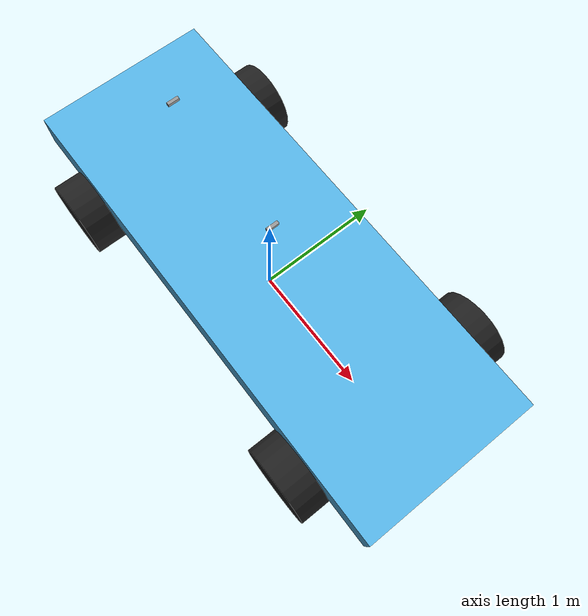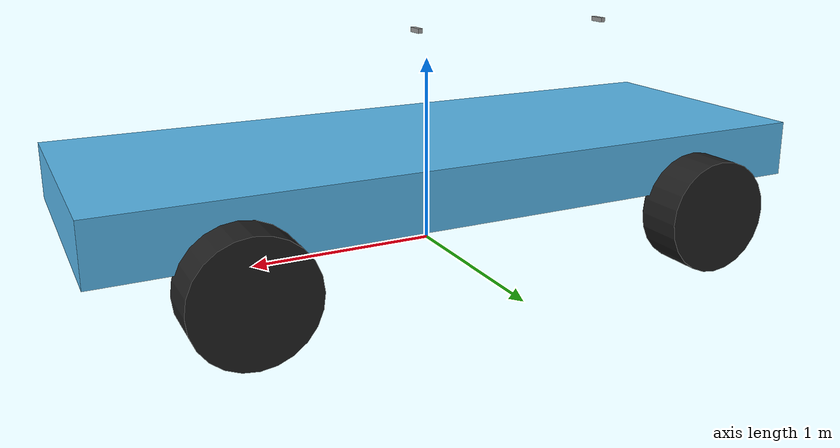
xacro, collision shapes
<?xml version="1.0"?>
<robot name="autocar_ros" xmlns:xacro="http://ros.org/wiki/xacro">

  <!-- ========== SENSOR ENABLE ARGS (default: all on) ========== -->
  <xacro:arg name="enable_frontcam" default="true"/>
  <xacro:arg name="enable_rearcam" default="true"/>
  <xacro:arg name="enable_imu" default="true"/>

  <xacro:property name="r" value="0.3"/>
  <xacro:property name="w" value="0.25"/>

  <!-- Base Footprint -->
  <link name="base_footprint"/>

  <joint name="base_joint" type="fixed">
    <parent link="base_footprint"/>
    <child link="chassis"/>
    <origin rpy="0 0 0" xyz="0 0 0"/>
  </joint>

  <link name="chassis">
    <visual>
      <geometry>
        <mesh filename="package://gazebo_cars/models/car_019/meshes/car_019.dae"/>
      </geometry>
      <origin xyz="-0.05 0 0.56" rpy="0 0 -1.5708"/>
    </visual>
    <collision>
      <geometry>
        <box size="1.4 3.8 0.3"/>
      </geometry>
      <origin xyz="0 0 0.45" rpy="0 0 -1.5708"/>
    </collision>
    <inertial>
      <mass value="500.0"/>
      <inertia ixx="0.5" ixy="0" ixz="0" iyy="0.5" iyz="0" izz="0.5"/>
    </inertial>
  </link>

  <!-- Wheel Macro -->
  <xacro:macro name="wheel" params="name x y mu">
    <link name="${name}">
      <visual>
        <geometry>
          <cylinder radius="${r}" length="${w}"/>
        </geometry>
      </visual>
      <collision>
        <geometry>
          <cylinder radius="${r}" length="${w}"/>
        </geometry>
      </collision>
      <inertial>
        <mass value="0.5"/>
        <inertia ixx="0.05" ixy="0" ixz="0" iyy="0.05" iyz="0" izz="0.03"/>
      </inertial>
    </link>

    <joint name="${name}_joint" type="continuous">
      <parent link="chassis"/>
      <child link="${name}"/>
      <origin xyz="${x} ${y} 0.2" rpy="1.5708 0 0"/>
      <axis xyz="0 0 1"/>
    </joint>

    <gazebo reference="${name}">
      <material>Gazebo/Black</material>
    </gazebo>
  </xacro:macro>

  <!-- Rear Wheels -->
  <xacro:wheel name="rear_wheel_right" x="-1.25" y="0.8" mu="10"/>
  <xacro:wheel name="rear_wheel_left"  x="-1.25" y="-0.8" mu="10"/>

  <!-- Front Wheels -->
  <xacro:wheel name="front_wheel_right" x="1.25" y="0.8" mu="5"/>
  <xacro:wheel name="front_wheel_left"  x="1.25" y="-0.8" mu="5"/>

  <!-- Differential Drive Plugin -->
  <gazebo>
    <plugin name="planar_move" filename="libgazebo_ros_planar_move.so">
      <commandTopic>cmd_vel</commandTopic>
      <odometryTopic>odom</odometryTopic>
      <odometryFrame>odom</odometryFrame>
      <odometryRate>10</odometryRate>
      <cmdTimeout>0.5</cmdTimeout>
      <robotBaseFrame>base_footprint</robotBaseFrame>
      <leftJoint>front_wheel_left_joint</leftJoint>
      <rightJoint>front_wheel_right_joint</rightJoint>
      <wheelSeparation>1.6</wheelSeparation>
      <wheelDiameter>0.6</wheelDiameter>
      <torque>0</torque>
    </plugin>
  </gazebo>

  <xacro:include filename="$(find autocar_ros)/urdf/sensors/camera_d435.xacro"/>

  <xacro:if value="$(arg enable_frontcam)">
    <xacro:camera_d435 parent_link="chassis" name="camera_front"
                      xyz="0.06 0 1.15" rpy="0 0 0" use_depth="true"/>
  </xacro:if>

  <xacro:if value="$(arg enable_rearcam)">
    <xacro:camera_d435 parent_link="chassis" name="camera_rear"
                       xyz="-1.1 0 1.15" rpy="0 0 3.14159" use_depth="false"/>
  </xacro:if>

  <xacro:if value="$(arg enable_imu)">
    <xacro:include filename="$(find autocar_ros)/urdf/sensors/imu.xacro"/>
    <xacro:imu_sensor name="imu" parent="chassis" xyz="0 0 0" rpy="0 -1.5708 0"/>
  </xacro:if>

</robot>

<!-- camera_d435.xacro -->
<robot xmlns:xacro="http://www.ros.org/wiki/xacro">

  <xacro:include filename="$(find hector_sensors_description)/urdf/realsense_d435_camera.urdf.xacro"/>

  <xacro:macro name="camera_d435"
               params="parent_link name xyz rpy
                       min_range:=0.3 max_range:=30.0 update_rate:=20
                       horizontal_fov_deg:=80 width:=640 height:=480
                       use_depth:=true">

    <!-- Physical model (mesh + collision + inertial) — same for both modes -->
    <xacro:realsense_d435_camera_model name="${name}" parent="${parent_link}">
      <origin xyz="${xyz}" rpy="${rpy}"/>
    </xacro:realsense_d435_camera_model>

    <gazebo reference="${name}_link">

      <!-- ========== DEPTH MODE ========== -->
      <xacro:if value="${use_depth}">
        <sensor type="depth" name="${name}">
          <update_rate>${update_rate}</update_rate>
          <camera>
            <horizontal_fov>${horizontal_fov_deg * M_PI / 180.0}</horizontal_fov>
            <image>
              <format>B8G8R8</format>
              <width>${width}</width>
              <height>${height}</height>
            </image>
            <clip>
              <near>${min_range}</near>
              <far>${max_range}</far>
            </clip>
          </camera>
          <plugin name="${name}_camera_controller" filename="libgazebo_ros_openni_kinect.so">
            <alwaysOn>true</alwaysOn>
            <updateRate>${update_rate}</updateRate>
            <cameraName>${name}</cameraName>
            <imageTopicName>color/image_raw</imageTopicName>
            <cameraInfoTopicName>color/camera_info</cameraInfoTopicName>
            <frameName>${name}_color_optical_frame</frameName>
            <cameraInfoTopicName>color/camera_info</cameraInfoTopicName>
            <depthImageTopicName>depth/image_raw</depthImageTopicName>
            <depthImageCameraInfoTopicName>depth/camera_info</depthImageCameraInfoTopicName>
            <pointCloudTopicName>depth/points</pointCloudTopicName>
            <pointCloudCutoff>${min_range}</pointCloudCutoff>
            <pointCloudCutoffMax>${max_range}</pointCloudCutoffMax>
          </plugin>
        </sensor>
      </xacro:if>

      <!-- ========== COLOR-ONLY MODE ========== -->
      <xacro:unless value="${use_depth}">
        <sensor type="camera" name="${name}">
          <update_rate>${update_rate}</update_rate>
          <camera>
            <horizontal_fov>${horizontal_fov_deg * M_PI / 180.0}</horizontal_fov>
            <image>
              <format>R8G8B8</format>
              <width>${width}</width>
              <height>${height}</height>
            </image>
            <clip>
              <near>${min_range}</near>
              <far>${max_range}</far>
            </clip>
          </camera>
          <plugin name="${name}_camera_controller" filename="libgazebo_ros_camera.so">
            <alwaysOn>true</alwaysOn>
            <updateRate>${update_rate}</updateRate>
            <cameraName>${name}</cameraName>
            <imageTopicName>color/image_raw</imageTopicName>
            <cameraInfoTopicName>color/camera_info</cameraInfoTopicName>
            <frameName>${name}_color_optical_frame</frameName>
          </plugin>
        </sensor>
      </xacro:unless>

    </gazebo>
  </xacro:macro>

</robot>

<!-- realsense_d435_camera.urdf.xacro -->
<robot xmlns:xacro="http://www.ros.org/wiki/xacro">
  <xacro:arg name="simulator" default="gazebo"/>
  <xacro:property name="M_PI" value="3.1415926535897931" />

  <xacro:property name="realsense_d435_width" value="0.09"/>
  <xacro:property name="realsense_d435_height" value="0.025"/>
  <xacro:property name="realsense_d435_depth" value="0.025"/>

  <xacro:property name="realsense_d435_front_to_depth" value="0.0042" /> <!-- Intel_RealSense_D400_Family_Datasheet_Jan2019.pdf, page 64 -->
  <xacro:property name="realsense_d435_mount_hole_to_front" value="0.0149" /> <!-- Measured from CAD file -->

  <xacro:property name="realsense_d435_case_offset_x" value="${realsense_d435_front_to_depth - realsense_d435_depth/2.0}"/>
  <xacro:property name="realsense_d435_case_offset_y" value="-0.0175"/> <!-- mounting hole to depth frame, Intel_RealSense_D400_Family_Datasheet_Jan2019.pdf, page 66 -->
  <xacro:property name="realsense_d435_case_offset_z" value="0.0"/>

    <!--
     This macro only adds the model, it does not also add the openni gazebo plugin.
     The origin is the left infrared (depth) camera, which is also the origin of the depth image
    -->
    <xacro:macro name="realsense_d435_camera_model" params="name parent *origin">

      <joint name="${name}_joint" type="fixed">
        <xacro:insert_block name="origin" />
        <parent link="${parent}"/>
        <child link="${name}_link"/>
      </joint>

      <link name="${name}_link">
        <inertial>
          <mass value="0.072" />
          <origin xyz="0 0 0" rpy="0 0 0" />
          <inertia ixx="5.8083e-4" ixy="0" ixz="0" iyy="3.0833e-5" iyz="0" izz="5.9083e-4" />
        </inertial>
	<visual>
          <origin xyz="${realsense_d435_front_to_depth} ${realsense_d435_case_offset_y} 0.0" rpy="${M_PI/2} 0 ${M_PI/2}" />
          <geometry>
            <mesh filename="package://hector_sensors_description/meshes/intel_realsense_d435/D435.dae" scale="0.001 0.001 0.001" />
          </geometry>
        </visual>
        <collision>
          <origin xyz="${realsense_d435_case_offset_x} ${realsense_d435_case_offset_y} ${realsense_d435_case_offset_z}" rpy="0 0 0" />
          <geometry>
            <!--Dimensions taken from https://click.intel.com/intelr-realsensetm-depth-camera-d435.html-->
            <box size="${realsense_d435_depth} ${realsense_d435_width} ${realsense_d435_height}" />
          </geometry>
        </collision>
      </link>

      <gazebo reference="${name}_link">
        <material>Gazebo/Grey</material>
      </gazebo>
    </xacro:macro>

    <xacro:macro name="realsense_d435_camera_model_with_mount" params="name parent *origin">
      <joint name="${name}_mount_joint" type="fixed">
        <xacro:insert_block name="origin" />
        <parent link="${parent}"/>
        <child link="${name}_mount_link"/>
      </joint>

      <link name="${name}_mount_link">
      </link>

      <xacro:realsense_d435_camera_model name="${name}" parent="${name}_mount_link">
        <origin xyz="${realsense_d435_mount_hole_to_front - realsense_d435_front_to_depth} ${-realsense_d435_case_offset_y} ${realsense_d435_height/2.0}" rpy="0 0 0"/>
      </xacro:realsense_d435_camera_model>
    </xacro:macro>

    <xacro:macro name="realsense_d435_camera_model_no_geom" params="name parent *origin">
      <joint name="${name}_joint" type="fixed">
        <xacro:insert_block name="origin" />
        <parent link="${parent}"/>
        <child link="${name}_link"/>
      </joint>

      <link name="${name}_link">
      </link>
    </xacro:macro>

    <xacro:macro name="realsense_d435_camera_gazebo_plugin_macro" params="name parent image_topic depth_topic:=image_raw depth_points_topic frame_name:=color min_range max_range update_rate">
      <gazebo reference="${name}_link">
        <sensor type="depth" name="${name}">
          <update_rate>${update_rate}</update_rate>
          <camera>
            <horizontal_fov>${69.4 * M_PI/180.0}</horizontal_fov>
            <image>
              <format>B8G8R8</format>
              <width>640</width>
              <height>480</height>
            </image>
            <clip>
              <near>${min_range}</near>
              <far>${max_range}</far>
            </clip>
          </camera>

          <xacro:if value="${'$(arg simulator)' == 'gazebo'}">
            <plugin name="${name}_camera_controller" filename="libgazebo_ros_openni_kinect.so">
              <cameraName>${name}</cameraName>
              <imageTopicName>color/${image_topic}</imageTopicName>
              <cameraInfoTopicName>color/camera_info</cameraInfoTopicName>
              <depthImageTopicName>depth/${depth_topic}</depthImageTopicName>
              <depthImageCameraInfoTopicName>depth/camera_info</depthImageCameraInfoTopicName>
              <pointCloudTopicName>${depth_points_topic}</pointCloudTopicName>
              <frameName>${name}_${frame_name}_optical_frame</frameName>
            </plugin>
          </xacro:if>
        </sensor>
      </gazebo>
    </xacro:macro>

    <!--
      Use the macro below for adding the realsense model with link geometry
      The origin is the left infrared (depth) camera, which is also the origin of the depth image
    -->
    <xacro:macro name="realsense_d435_camera" params="name parent *origin">
      <xacro:realsense_d435_camera_model name="${name}" parent="${parent}">
        <xacro:insert_block name="origin" />
      </xacro:realsense_d435_camera_model>

      <xacro:realsense_d435_camera_gazebo_plugin_macro name="${name}" parent="${parent}" image_topic="image_raw" depth_points_topic="depth/points" min_range="0.3" max_range="9.0" update_rate="20"/>
    </xacro:macro>

    <!--
      Insert the realsense with link geometry. Origin is the mounting hole at the back of the camera.
    -->
    <xacro:macro name="realsense_d435_camera_with_mount" params="name parent *origin">
      <xacro:realsense_d435_camera_model_with_mount name="${name}" parent="${parent}">
        <xacro:insert_block name="origin" />
      </xacro:realsense_d435_camera_model_with_mount>

      <xacro:realsense_d435_camera_gazebo_plugin_macro name="${name}" parent="${parent}" image_topic="image_raw" depth_points_topic="depth/points" min_range="0.3" max_range="9.0" update_rate="20"/>
    </xacro:macro>

    <!--
      Use the macro below for adding the realsense model without link geometry,
      e.g. if the sensor is added into preexisting geometry
    -->
    <xacro:macro name="realsense_camera_no_geom" params="name parent *origin">
      <xacro:realsense_d435_camera_model_no_geom name="${name}" parent="${parent}">
        <xacro:insert_block name="origin" />
      </xacro:realsense_d435_camera_model_no_geom>

      <xacro:realsense_camera_gazebo_plugin_macro name="${name}" parent="${parent}" image_topic="image_raw" depth_points_topic="depth/points" min_range="0.3" max_range="9.0" update_rate="20"/>
    </xacro:macro>

    <xacro:macro name="realsense_d435_camera_no_geom_comprehensive_params" params="name parent *origin image_topic depth_topic:=image_raw depth_points_topic frame_name:=color min_range max_range update_rate">
      <xacro:realsense_d435_camera_model_no_geom name="${name}" parent="${parent}">
        <xacro:insert_block name="origin" />
      </xacro:realsense_d435_camera_model_no_geom>

      <xacro:realsense_camera_gazebo_plugin_macro name="${name}" parent="${parent}" image_topic="${image_topic}" depth_topic="${depth_topic}" depth_points_topic="${depth_points_topic}" frame_name="${frame_name}" min_range="${min_range}" max_range="${max_range}" update_rate="${update_rate}"/>
    </xacro:macro>

    <xacro:macro name="realsense_d435_camera_comprehensive_params" params="name parent *origin image_topic:=image_raw depth_topic:=image_raw depth_points_topic:=depth/color/points frame_name:=color min_range:=0.3 max_range:=9.0 update_rate:=20">
      <xacro:realsense_d435_camera_model name="${name}" parent="${parent}">
        <xacro:insert_block name="origin" />
      </xacro:realsense_d435_camera_model>

      <xacro:realsense_d435_camera_gazebo_plugin_macro name="${name}" parent="${parent}" image_topic="${image_topic}" depth_topic="${depth_topic}" depth_points_topic="${depth_points_topic}" frame_name="${frame_name}" min_range="${min_range}" max_range="${max_range}" update_rate="${update_rate}"/>
    </xacro:macro>

    <xacro:macro name="realsense_d435_camera_with_mount_comprehensive_params" params="name parent *origin image_topic:=image_raw depth_topic:=image_raw depth_points_topic:=depth/color/points frame_name:=color min_range:=0.3 max_range:=9.0 update_rate:=20">
      <xacro:realsense_d435_camera_model_with_mount name="${name}" parent="${parent}">
        <xacro:insert_block name="origin" />
      </xacro:realsense_d435_camera_model_with_mount>

      <xacro:realsense_d435_camera_gazebo_plugin_macro name="${name}" parent="${parent}" image_topic="${image_topic}" depth_topic="${depth_topic}" depth_points_topic="${depth_points_topic}" frame_name="${frame_name}" min_range="${min_range}" max_range="${max_range}" update_rate="${update_rate}"/>
    </xacro:macro>

  </robot>

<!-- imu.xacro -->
<robot xmlns:xacro="http://www.ros.org/wiki/xacro">
  <xacro:macro name="imu_sensor" params="name parent xyz rpy">
    <link name="${name}_link">
      <inertial>
        <mass value="0.01"/>
        <inertia ixx="1e-5" ixy="0" ixz="0" iyy="1e-5" iyz="0" izz="1e-5"/>
      </inertial>
    </link>

    <joint name="${name}_joint" type="fixed">
      <origin xyz="${xyz}" rpy="${rpy}"/>
      <parent link="${parent}"/>
      <child link="${name}_link"/>
    </joint>

    <gazebo reference="${name}_link">
      <sensor type="imu" name="${name}">
        <always_on>true</always_on>
        <update_rate>100</update_rate>
        <pose>${xyz} ${rpy}</pose>
        <imu>
          <angular_velocity>
            <x>0.01</x>
            <y>0.01</y>
            <z>0.01</z>
          </angular_velocity>
          <linear_acceleration>
            <x>0.01</x>
            <y>0.01</y>
            <z>0.01</z>
          </linear_acceleration>
        </imu>
        <plugin name="imu_plugin" filename="libgazebo_ros_imu_sensor.so">
          <frameName>${name}_link</frameName>
          <topicName>${name}/data</topicName>
          <updateRateHZ>100.0</updateRateHZ>
          <gaussianNoise>0.01</gaussianNoise>
          <xyzOffset>0 0 0</xyzOffset>
          <rpyOffset>0 0 0</rpyOffset>
        </plugin>
      </sensor>
    </gazebo>

  </xacro:macro>
</robot>
